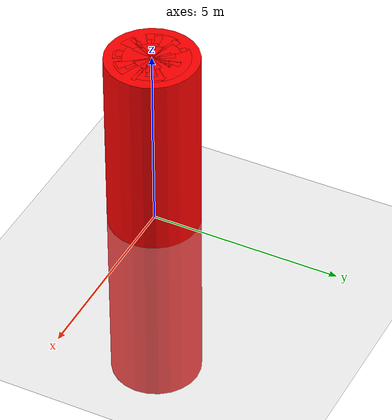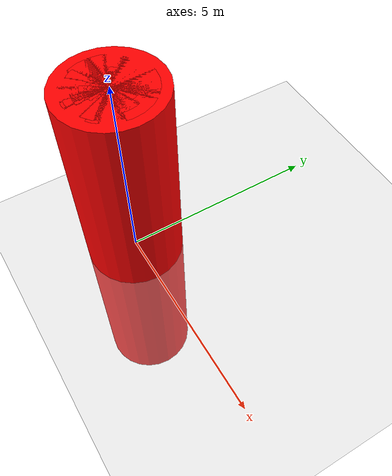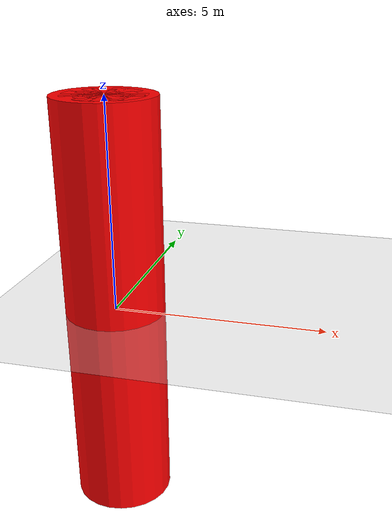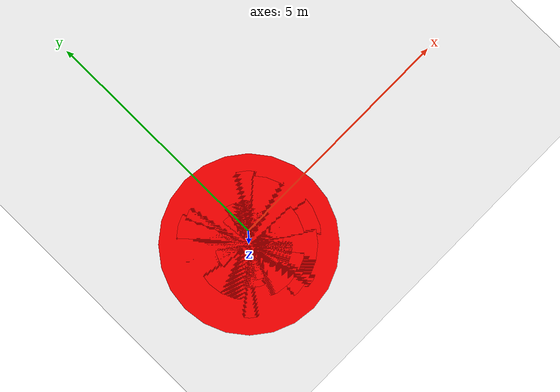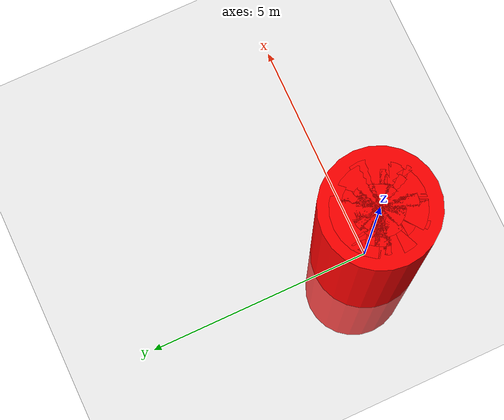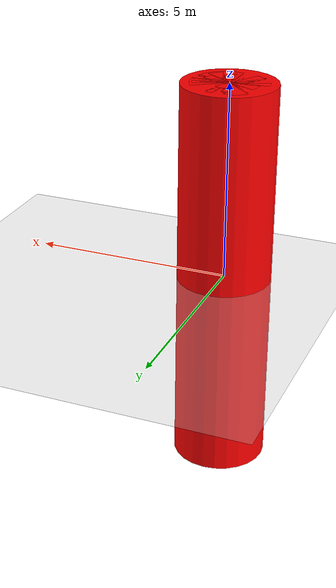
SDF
<sdf version="1.6">
 <world name="default">
  <light name="sun" type="directional">
   <pose>0 0 10 0 -0 0</pose>
   <diffuse>0.8 0.8 0.8 1</diffuse>
   <specular>0.2 0.2 0.2 1</specular>
   <attenuation>
    <range>1000</range>
    <constant>0.9</constant>
    <linear>0.01</linear>
    <quadratic>0.001</quadratic>
   </attenuation>
   <direction>-0.5 0.1 -0.9</direction>
  </light>
  <model name="ground_plane">
   <static>1</static>
   <link name="link">
    <collision name="collision">
     <geometry><plane><normal>0 0 1</normal><size>100 100</size></plane></geometry>
     <surface><friction><ode><mu>100</mu><mu2>50</mu2></ode></friction></surface>
    </collision>
    <visual name="visual">
     <cast_shadows>0</cast_shadows>
     <geometry><plane><normal>0 0 1</normal><size>100 100</size></plane></geometry>
     <material>
      <script><uri>file://media/materials/scripts/gazebo.material</uri><name>Gazebo/Grey</name></script>
     </material>
    </visual>
   </link>
  </model>
  <physics name="default_physics" default="0" type="ode">
   <max_step_size>0.001</max_step_size>
   <real_time_factor>10</real_time_factor>
   <real_time_update_rate>1000</real_time_update_rate>
   <ode>
    <solver>
     <type>quick</type>
     <iters>100</iters>
     <sor>1.4</sor>
     <use_dynamic_moi_rescaling>0</use_dynamic_moi_rescaling>
    </solver>
    <constraints>
     <cfm>1e-10</cfm>
     <erp>0.2</erp>
     <contact_max_correcting_vel>100</contact_max_correcting_vel>
     <contact_surface_layer>0.001</contact_surface_layer>
    </constraints>
   </ode>
  </physics>
  <gravity>0 0 -9.81</gravity>
  <magnetic_field>6e-06 2.3e-05 -4.2e-05</magnetic_field>
  <atmosphere type="adiabatic"/>
  <scene><ambient>0.4 0.4 0.4 1</ambient><background>0.7 0.7 0.7 1</background><shadows>1</shadows></scene>
  <spherical_coordinates>
   <surface_model>EARTH_WGS84</surface_model>
   <latitude_deg>0</latitude_deg>
   <longitude_deg>0</longitude_deg>
   <elevation>0</elevation>
   <heading_deg>0</heading_deg>
  </spherical_coordinates>
  <model name="Red Target_0">
   <link name="link">
    <inertial>
     <mass>1</mass>
     <inertia><ixx>0.145833</ixx><ixy>0</ixy><ixz>0</ixz><iyy>0.145833</iyy><iyz>0</iyz><izz>0.125</izz></inertia>
    </inertial>
    <visual name="visual">
     <geometry><cylinder><radius>1.185</radius><length>10</length></cylinder></geometry>
     <material>
      <script><name>Gazebo/Grey</name><uri>file://media/materials/scripts/gazebo.material</uri></script>
      <shader type="pixel"><normal_map>__default__</normal_map></shader>
      <ambient>1 0 0 1</ambient>
      <diffuse>0 0 0 1</diffuse>
      <specular>0 0 0 1</specular>
      <emissive>1 0 0 1</emissive>
     </material>
     <cast_shadows>0</cast_shadows>
    </visual>
    <collision name="collision">
     <geometry><cylinder><radius>1.185</radius><length>10</length></cylinder></geometry>
     <surface>
      <friction>
       <ode><mu>1</mu><mu2>1</mu2><fdir1>0 0 0</fdir1><slip1>0</slip1><slip2>0</slip2></ode>
       <torsional>
        <coefficient>1</coefficient>
        <patch_radius>0</patch_radius>
        <surface_radius>0</surface_radius>
        <use_patch_radius>1</use_patch_radius>
        <ode><slip>0</slip></ode>
       </torsional>
      </friction>
      <bounce><restitution_coefficient>0</restitution_coefficient><threshold>1e+06</threshold></bounce>
      <contact>
       <collide_without_contact>0</collide_without_contact>
       <collide_without_contact_bitmask>1</collide_without_contact_bitmask>
       <collide_bitmask>1</collide_bitmask>
       <ode>
        <soft_cfm>0</soft_cfm>
        <soft_erp>0.2</soft_erp>
        <kp>1e+13</kp>
        <kd>1</kd>
        <max_vel>0.01</max_vel>
        <min_depth>0</min_depth>
       </ode>
       <bullet>
        <split_impulse>1</split_impulse>
        <split_impulse_penetration_threshold>-0.01</split_impulse_penetration_threshold>
        <soft_cfm>0</soft_cfm>
        <soft_erp>0.2</soft_erp>
        <kp>1e+13</kp>
        <kd>1</kd>
       </bullet>
      </contact>
     </surface>
    </collision>
   </link>
   <static>1</static>
  </model>
  <model name="Red Target_1">
   <link name="link">
    <inertial>
     <mass>1</mass>
     <inertia><ixx>0.145833</ixx><ixy>0</ixy><ixz>0</ixz><iyy>0.145833</iyy><iyz>0</iyz><izz>0.125</izz></inertia>
    </inertial>
    <visual name="visual">
     <geometry><cylinder><radius>0.96</radius><length>10</length></cylinder></geometry>
     <material>
      <script><name>Gazebo/Grey</name><uri>file://media/materials/scripts/gazebo.material</uri></script>
      <shader type="pixel"><normal_map>__default__</normal_map></shader>
      <ambient>1 0 0 1</ambient>
      <diffuse>0 0 0 1</diffuse>
      <specular>0 0 0 1</specular>
      <emissive>1 0 0 1</emissive>
     </material>
     <cast_shadows>0</cast_shadows>
    </visual>
    <collision name="collision">
     <geometry><cylinder><radius>0.96</radius><length>10</length></cylinder></geometry>
     <surface>
      <friction>
       <ode><mu>1</mu><mu2>1</mu2><fdir1>0 0 0</fdir1><slip1>0</slip1><slip2>0</slip2></ode>
       <torsional>
        <coefficient>1</coefficient>
        <patch_radius>0</patch_radius>
        <surface_radius>0</surface_radius>
        <use_patch_radius>1</use_patch_radius>
        <ode><slip>0</slip></ode>
       </torsional>
      </friction>
      <bounce><restitution_coefficient>0</restitution_coefficient><threshold>1e+06</threshold></bounce>
      <contact>
       <collide_without_contact>0</collide_without_contact>
       <collide_without_contact_bitmask>1</collide_without_contact_bitmask>
       <collide_bitmask>1</collide_bitmask>
       <ode>
        <soft_cfm>0</soft_cfm>
        <soft_erp>0.2</soft_erp>
        <kp>1e+13</kp>
        <kd>1</kd>
        <max_vel>0.01</max_vel>
        <min_depth>0</min_depth>
       </ode>
       <bullet>
        <split_impulse>1</split_impulse>
        <split_impulse_penetration_threshold>-0.01</split_impulse_penetration_threshold>
        <soft_cfm>0</soft_cfm>
        <soft_erp>0.2</soft_erp>
        <kp>1e+13</kp>
        <kd>1</kd>
       </bullet>
      </contact>
     </surface>
    </collision>
   </link>
   <static>1</static>
  </model>
  <model name="Red Target_2">
   <link name="link">
    <inertial>
     <mass>1</mass>
     <inertia><ixx>0.145833</ixx><ixy>0</ixy><ixz>0</ixz><iyy>0.145833</iyy><iyz>0</iyz><izz>0.125</izz></inertia>
    </inertial>
    <visual name="visual">
     <geometry><cylinder><radius>0.9</radius><length>10</length></cylinder></geometry>
     <material>
      <script><name>Gazebo/Grey</name><uri>file://media/materials/scripts/gazebo.material</uri></script>
      <shader type="pixel"><normal_map>__default__</normal_map></shader>
      <ambient>1 0 0 1</ambient>
      <diffuse>0 0 0 1</diffuse>
      <specular>0 0 0 1</specular>
      <emissive>1 0 0 1</emissive>
     </material>
     <cast_shadows>0</cast_shadows>
    </visual>
    <collision name="collision">
     <geometry><cylinder><radius>0.9</radius><length>10</length></cylinder></geometry>
     <surface>
      <friction>
       <ode><mu>1</mu><mu2>1</mu2><fdir1>0 0 0</fdir1><slip1>0</slip1><slip2>0</slip2></ode>
       <torsional>
        <coefficient>1</coefficient>
        <patch_radius>0</patch_radius>
        <surface_radius>0</surface_radius>
        <use_patch_radius>1</use_patch_radius>
        <ode><slip>0</slip></ode>
       </torsional>
      </friction>
      <bounce><restitution_coefficient>0</restitution_coefficient><threshold>1e+06</threshold></bounce>
      <contact>
       <collide_without_contact>0</collide_without_contact>
       <collide_without_contact_bitmask>1</collide_without_contact_bitmask>
       <collide_bitmask>1</collide_bitmask>
       <ode>
        <soft_cfm>0</soft_cfm>
        <soft_erp>0.2</soft_erp>
        <kp>1e+13</kp>
        <kd>1</kd>
        <max_vel>0.01</max_vel>
        <min_depth>0</min_depth>
       </ode>
       <bullet>
        <split_impulse>1</split_impulse>
        <split_impulse_penetration_threshold>-0.01</split_impulse_penetration_threshold>
        <soft_cfm>0</soft_cfm>
        <soft_erp>0.2</soft_erp>
        <kp>1e+13</kp>
        <kd>1</kd>
       </bullet>
      </contact>
     </surface>
    </collision>
   </link>
   <static>1</static>
  </model>
  <model name="Red Target_3">
   <link name="link">
    <inertial>
     <mass>1</mass>
     <inertia><ixx>0.145833</ixx><ixy>0</ixy><ixz>0</ixz><iyy>0.145833</iyy><iyz>0</iyz><izz>0.125</izz></inertia>
    </inertial>
    <visual name="visual">
     <geometry><cylinder><radius>0.735</radius><length>10</length></cylinder></geometry>
     <material>
      <script><name>Gazebo/Grey</name><uri>file://media/materials/scripts/gazebo.material</uri></script>
      <shader type="pixel"><normal_map>__default__</normal_map></shader>
      <ambient>1 0 0 1</ambient>
      <diffuse>0 0 0 1</diffuse>
      <specular>0 0 0 1</specular>
      <emissive>1 0 0 1</emissive>
     </material>
     <cast_shadows>0</cast_shadows>
    </visual>
    <collision name="collision">
     <geometry><cylinder><radius>0.735</radius><length>10</length></cylinder></geometry>
     <surface>
      <friction>
       <ode><mu>1</mu><mu2>1</mu2><fdir1>0 0 0</fdir1><slip1>0</slip1><slip2>0</slip2></ode>
       <torsional>
        <coefficient>1</coefficient>
        <patch_radius>0</patch_radius>
        <surface_radius>0</surface_radius>
        <use_patch_radius>1</use_patch_radius>
        <ode><slip>0</slip></ode>
       </torsional>
      </friction>
      <bounce><restitution_coefficient>0</restitution_coefficient><threshold>1e+06</threshold></bounce>
      <contact>
       <collide_without_contact>0</collide_without_contact>
       <collide_without_contact_bitmask>1</collide_without_contact_bitmask>
       <collide_bitmask>1</collide_bitmask>
       <ode>
        <soft_cfm>0</soft_cfm>
        <soft_erp>0.2</soft_erp>
        <kp>1e+13</kp>
        <kd>1</kd>
        <max_vel>0.01</max_vel>
        <min_depth>0</min_depth>
       </ode>
       <bullet>
        <split_impulse>1</split_impulse>
        <split_impulse_penetration_threshold>-0.01</split_impulse_penetration_threshold>
        <soft_cfm>0</soft_cfm>
        <soft_erp>0.2</soft_erp>
        <kp>1e+13</kp>
        <kd>1</kd>
       </bullet>
      </contact>
     </surface>
    </collision>
   </link>
   <static>1</static>
  </model>
  <model name="Red Target_4">
   <link name="link">
    <inertial>
     <mass>1</mass>
     <inertia><ixx>0.145833</ixx><ixy>0</ixy><ixz>0</ixz><iyy>0.145833</iyy><iyz>0</iyz><izz>0.125</izz></inertia>
    </inertial>
    <visual name="visual">
     <geometry><cylinder><radius>0.57</radius><length>10</length></cylinder></geometry>
     <material>
      <script><name>Gazebo/Grey</name><uri>file://media/materials/scripts/gazebo.material</uri></script>
      <shader type="pixel"><normal_map>__default__</normal_map></shader>
      <ambient>1 0 0 1</ambient>
      <diffuse>0 0 0 1</diffuse>
      <specular>0 0 0 1</specular>
      <emissive>1 0 0 1</emissive>
     </material>
     <cast_shadows>0</cast_shadows>
    </visual>
    <collision name="collision">
     <geometry><cylinder><radius>0.57</radius><length>10</length></cylinder></geometry>
     <surface>
      <friction>
       <ode><mu>1</mu><mu2>1</mu2><fdir1>0 0 0</fdir1><slip1>0</slip1><slip2>0</slip2></ode>
       <torsional>
        <coefficient>1</coefficient>
        <patch_radius>0</patch_radius>
        <surface_radius>0</surface_radius>
        <use_patch_radius>1</use_patch_radius>
        <ode><slip>0</slip></ode>
       </torsional>
      </friction>
      <bounce><restitution_coefficient>0</restitution_coefficient><threshold>1e+06</threshold></bounce>
      <contact>
       <collide_without_contact>0</collide_without_contact>
       <collide_without_contact_bitmask>1</collide_without_contact_bitmask>
       <collide_bitmask>1</collide_bitmask>
       <ode>
        <soft_cfm>0</soft_cfm>
        <soft_erp>0.2</soft_erp>
        <kp>1e+13</kp>
        <kd>1</kd>
        <max_vel>0.01</max_vel>
        <min_depth>0</min_depth>
       </ode>
       <bullet>
        <split_impulse>1</split_impulse>
        <split_impulse_penetration_threshold>-0.01</split_impulse_penetration_threshold>
        <soft_cfm>0</soft_cfm>
        <soft_erp>0.2</soft_erp>
        <kp>1e+13</kp>
        <kd>1</kd>
       </bullet>
      </contact>
     </surface>
    </collision>
   </link>
   <static>1</static>
  </model>
  <model name="Red Target_5">
   <link name="link">
    <inertial>
     <mass>1</mass>
     <inertia><ixx>0.145833</ixx><ixy>0</ixy><ixz>0</ixz><iyy>0.145833</iyy><iyz>0</iyz><izz>0.125</izz></inertia>
    </inertial>
    <visual name="visual">
     <geometry><cylinder><radius>0.48</radius><length>10</length></cylinder></geometry>
     <material>
      <script><name>Gazebo/Grey</name><uri>file://media/materials/scripts/gazebo.material</uri></script>
      <shader type="pixel"><normal_map>__default__</normal_map></shader>
      <ambient>1 0 0 1</ambient>
      <diffuse>0 0 0 1</diffuse>
      <specular>0 0 0 1</specular>
      <emissive>1 0 0 1</emissive>
     </material>
     <cast_shadows>0</cast_shadows>
    </visual>
    <collision name="collision">
     <geometry><cylinder><radius>0.48</radius><length>10</length></cylinder></geometry>
     <surface>
      <friction>
       <ode><mu>1</mu><mu2>1</mu2><fdir1>0 0 0</fdir1><slip1>0</slip1><slip2>0</slip2></ode>
       <torsional>
        <coefficient>1</coefficient>
        <patch_radius>0</patch_radius>
        <surface_radius>0</surface_radius>
        <use_patch_radius>1</use_patch_radius>
        <ode><slip>0</slip></ode>
       </torsional>
      </friction>
      <bounce><restitution_coefficient>0</restitution_coefficient><threshold>1e+06</threshold></bounce>
      <contact>
       <collide_without_contact>0</collide_without_contact>
       <collide_without_contact_bitmask>1</collide_without_contact_bitmask>
       <collide_bitmask>1</collide_bitmask>
       <ode>
        <soft_cfm>0</soft_cfm>
        <soft_erp>0.2</soft_erp>
        <kp>1e+13</kp>
        <kd>1</kd>
        <max_vel>0.01</max_vel>
        <min_depth>0</min_depth>
       </ode>
       <bullet>
        <split_impulse>1</split_impulse>
        <split_impulse_penetration_threshold>-0.01</split_impulse_penetration_threshold>
        <soft_cfm>0</soft_cfm>
        <soft_erp>0.2</soft_erp>
        <kp>1e+13</kp>
        <kd>1</kd>
       </bullet>
      </contact>
     </surface>
    </collision>
   </link>
   <static>1</static>
  </model>
  <model name="Red Target_6">
   <link name="link">
    <inertial>
     <mass>1</mass>
     <inertia><ixx>0.145833</ixx><ixy>0</ixy><ixz>0</ixz><iyy>0.145833</iyy><iyz>0</iyz><izz>0.125</izz></inertia>
    </inertial>
    <visual name="visual">
     <geometry><cylinder><radius>0.45</radius><length>10</length></cylinder></geometry>
     <material>
      <script><name>Gazebo/Grey</name><uri>file://media/materials/scripts/gazebo.material</uri></script>
      <shader type="pixel"><normal_map>__default__</normal_map></shader>
      <ambient>1 0 0 1</ambient>
      <diffuse>0 0 0 1</diffuse>
      <specular>0 0 0 1</specular>
      <emissive>1 0 0 1</emissive>
     </material>
     <cast_shadows>0</cast_shadows>
    </visual>
    <collision name="collision">
     <geometry><cylinder><radius>0.45</radius><length>10</length></cylinder></geometry>
     <surface>
      <friction>
       <ode><mu>1</mu><mu2>1</mu2><fdir1>0 0 0</fdir1><slip1>0</slip1><slip2>0</slip2></ode>
       <torsional>
        <coefficient>1</coefficient>
        <patch_radius>0</patch_radius>
        <surface_radius>0</surface_radius>
        <use_patch_radius>1</use_patch_radius>
        <ode><slip>0</slip></ode>
       </torsional>
      </friction>
      <bounce><restitution_coefficient>0</restitution_coefficient><threshold>1e+06</threshold></bounce>
      <contact>
       <collide_without_contact>0</collide_without_contact>
       <collide_without_contact_bitmask>1</collide_without_contact_bitmask>
       <collide_bitmask>1</collide_bitmask>
       <ode>
        <soft_cfm>0</soft_cfm>
        <soft_erp>0.2</soft_erp>
        <kp>1e+13</kp>
        <kd>1</kd>
        <max_vel>0.01</max_vel>
        <min_depth>0</min_depth>
       </ode>
       <bullet>
        <split_impulse>1</split_impulse>
        <split_impulse_penetration_threshold>-0.01</split_impulse_penetration_threshold>
        <soft_cfm>0</soft_cfm>
        <soft_erp>0.2</soft_erp>
        <kp>1e+13</kp>
        <kd>1</kd>
       </bullet>
      </contact>
     </surface>
    </collision>
   </link>
   <static>1</static>
  </model>
  <model name="princes_gates">
   <link name="box">
    <collision name="collision"><geometry><box><size>1 1 0.01</size></box></geometry></collision>
    <visual name="visual">
     <geometry><box><size>1 1 0.01</size></box></geometry>
     <material>
      <script>
       <uri>model://princes_gates/materials/scripts</uri>
       <uri>model://princes_gates/materials/textures</uri>
       <name>princesgates/PrincesGates</name>
      </script>
     </material>
    </visual>
    <inertial>
     <inertia><ixx>1</ixx><ixy>0</ixy><ixz>0</ixz><iyy>1</iyy><iyz>0</iyz><izz>1</izz></inertia>
     <mass>1</mass>
    </inertial>
   </link>
  </model>
  <model name="cn_tower">
   <link name="box">
    <collision name="collision"><geometry><box><size>1 1 0.01</size></box></geometry></collision>
    <visual name="visual">
     <geometry><box><size>1 1 0.01</size></box></geometry>
     <material>
      <script>
       <uri>model://cn_tower/materials/scripts</uri>
       <uri>model://cn_tower/materials/textures</uri>
       <name>cntower/CNTower</name>
      </script>
     </material>
    </visual>
    <inertial>
     <inertia><ixx>1</ixx><ixy>0</ixy><ixz>0</ixz><iyy>1</iyy><iyz>0</iyz><izz>1</izz></inertia>
     <mass>1</mass>
    </inertial>
   </link>
  </model>
  <model name="casa_loma">
   <link name="box">
    <collision name="collision"><geometry><box><size>1 1 0.01</size></box></geometry></collision>
    <visual name="visual">
     <geometry><box><size>1 1 0.01</size></box></geometry>
     <material>
      <script>
       <uri>model://casa_loma/materials/scripts</uri>
       <uri>model://casa_loma/materials/textures</uri>
       <name>casaloma/CasaLoma</name>
      </script>
     </material>
    </visual>
    <inertial>
     <inertia><ixx>1</ixx><ixy>0</ixy><ixz>0</ixz><iyy>1</iyy><iyz>0</iyz><izz>1</izz></inertia>
     <mass>1</mass>
    </inertial>
   </link>
  </model>
  <model name="nathan_philips_square">
   <link name="box">
    <collision name="collision"><geometry><box><size>1 1 0.01</size></box></geometry></collision>
    <visual name="visual">
     <geometry><box><size>1 1 0.01</size></box></geometry>
     <material>
      <script>
       <uri>model://nathan_philips_square/materials/scripts</uri>
       <uri>model://nathan_philips_square/materials/textures</uri>
       <name>npsquare/NPSquare</name>
      </script>
     </material>
    </visual>
    <inertial>
     <inertia><ixx>1</ixx><ixy>0</ixy><ixz>0</ixz><iyy>1</iyy><iyz>0</iyz><izz>1</izz></inertia>
     <mass>1</mass>
    </inertial>
   </link>
  </model>
 </world>
</sdf>
